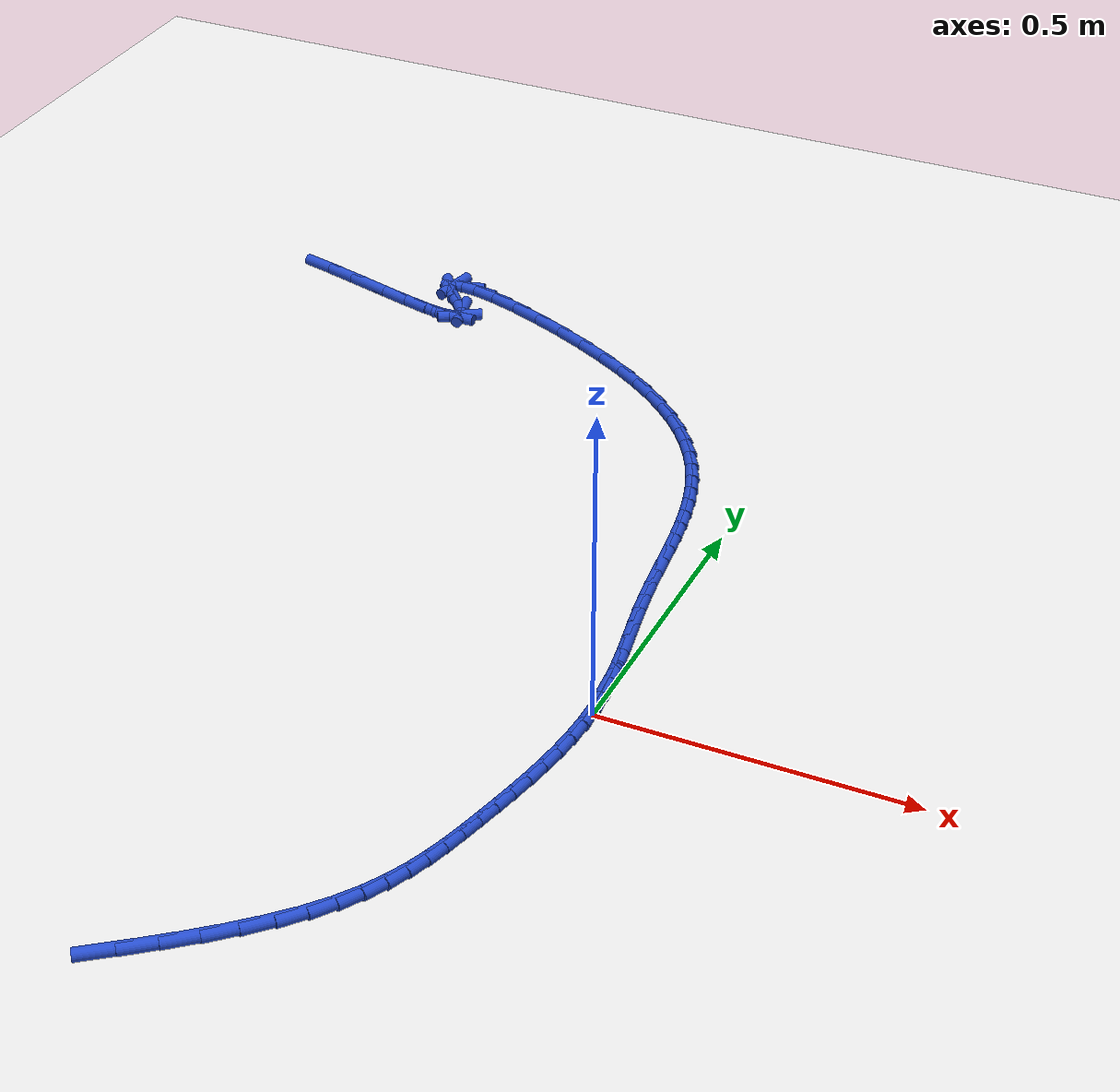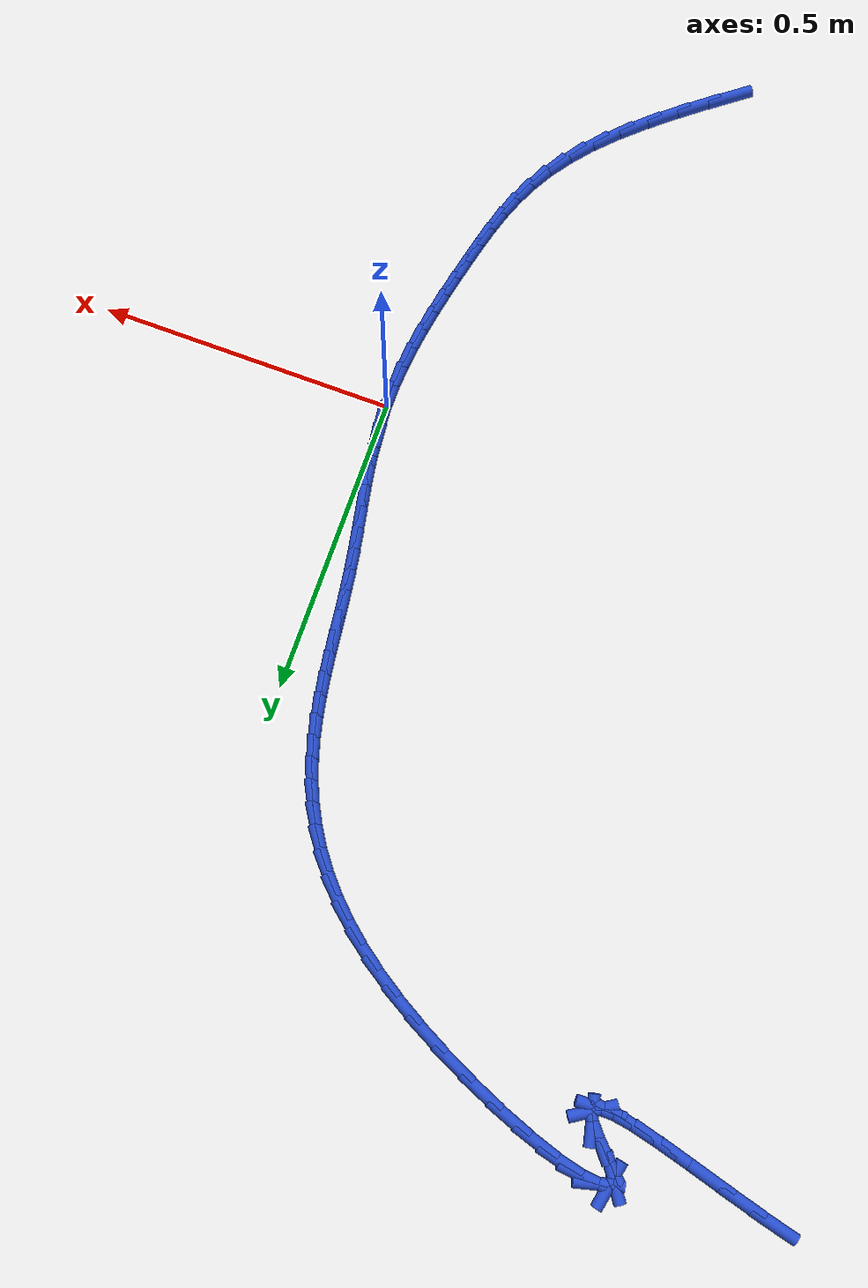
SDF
<sdf version="1.6">
 <world name="default">
  <model name="ground_plane">
   <static>1</static>
   <link name="link">
    <collision name="collision">
     <geometry><plane><normal>0 0 1</normal><size>100 100</size></plane></geometry>
     <surface><friction><ode><mu>100</mu><mu2>50</mu2></ode></friction></surface>
    </collision>
    <visual name="visual">
     <cast_shadows>0</cast_shadows>
     <geometry><plane><normal>0 0 1</normal><size>100 100</size></plane></geometry>
     <material>
      <script><uri>file://media/materials/scripts/gazebo.material</uri><name>Gazebo/WhiteGlow</name></script>
     </material>
    </visual>
   </link>
  </model>
  <model name="line">
   <link name="link_0">
    <pose>1.0408340855860843e-17 2.0816681711721685e-17 0.01 0 1.57 -1.5239924957447901</pose>
    <collision name="collision">
     <geometry><cylinder><radius>0.01</radius><length>0.08</length></cylinder></geometry>
    </collision>
    <visual name="visual">
     <material>
      <script><name>Gazebo/Blue</name><uri>file://media/materials/scripts/gazebo.material</uri></script>
     </material>
     <geometry><cylinder><radius>0.01</radius><length>0.08</length></cylinder></geometry>
    </visual>
   </link>
   <link name="link_1">
    <pose>-0.001704649692244981 0.03639455868884389 0.01 0 1.57 -1.4743259532851969</pose>
    <collision name="collision">
     <geometry><cylinder><radius>0.01</radius><length>0.08</length></cylinder></geometry>
    </collision>
    <visual name="visual">
     <material>
      <script><name>Gazebo/Blue</name><uri>file://media/materials/scripts/gazebo.material</uri></script>
     </material>
     <geometry><cylinder><radius>0.01</radius><length>0.08</length></cylinder></geometry>
    </visual>
   </link>
   <link name="link_2">
    <pose>-0.005213107491138306 0.07264990894340112 0.01 0 1.57 -1.4358090419680396</pose>
    <collision name="collision">
     <geometry><cylinder><radius>0.01</radius><length>0.08</length></cylinder></geometry>
    </collision>
    <visual name="visual">
     <material>
      <script><name>Gazebo/Blue</name><uri>file://media/materials/scripts/gazebo.material</uri></script>
     </material>
     <geometry><cylinder><radius>0.01</radius><length>0.08</length></cylinder></geometry>
    </visual>
   </link>
   <link name="link_3">
    <pose>-0.01011653349412395 0.10875410249948468 0.01 0 1.57 -1.4083729899003963</pose>
    <collision name="collision">
     <geometry><cylinder><radius>0.01</radius><length>0.08</length></cylinder></geometry>
    </collision>
    <visual name="visual">
     <material>
      <script><name>Gazebo/Blue</name><uri>file://media/materials/scripts/gazebo.material</uri></script>
     </material>
     <geometry><cylinder><radius>0.01</radius><length>0.08</length></cylinder></geometry>
    </visual>
   </link>
   <link name="link_4">
    <pose>-0.016006087798645922 0.14469519109290768 0.01 0 1.57 -1.3919193030232373</pose>
    <collision name="collision">
     <geometry><cylinder><radius>0.01</radius><length>0.08</length></cylinder></geometry>
    </collision>
    <visual name="visual">
     <material>
      <script><name>Gazebo/Blue</name><uri>file://media/materials/scripts/gazebo.material</uri></script>
     </material>
     <geometry><cylinder><radius>0.01</radius><length>0.08</length></cylinder></geometry>
    </visual>
   </link>
   <link name="link_5">
    <pose>-0.022472930502148214 0.18046122645948304 0.01 0 1.57 -1.3864199840498364</pose>
    <collision name="collision">
     <geometry><cylinder><radius>0.01</radius><length>0.08</length></cylinder></geometry>
    </collision>
    <visual name="visual">
     <material>
      <script><name>Gazebo/Blue</name><uri>file://media/materials/scripts/gazebo.material</uri></script>
     </material>
     <geometry><cylinder><radius>0.01</radius><length>0.08</length></cylinder></geometry>
    </visual>
   </link>
   <link name="link_6">
    <pose>-0.029108221702074815 0.2160402603350239 0.01 0 1.57 -1.39197840082482</pose>
    <collision name="collision">
     <geometry><cylinder><radius>0.01</radius><length>0.08</length></cylinder></geometry>
    </collision>
    <visual name="visual">
     <material>
      <script><name>Gazebo/Blue</name><uri>file://media/materials/scripts/gazebo.material</uri></script>
     </material>
     <geometry><cylinder><radius>0.01</radius><length>0.08</length></cylinder></geometry>
    </visual>
   </link>
   <link name="link_7">
    <pose>-0.03550312149586973 0.25142034445534317 0.01 0 1.57 -1.4088456013283674</pose>
    <collision name="collision">
     <geometry><cylinder><radius>0.01</radius><length>0.08</length></cylinder></geometry>
    </collision>
    <visual name="visual">
     <material>
      <script><name>Gazebo/Blue</name><uri>file://media/materials/scripts/gazebo.material</uri></script>
     </material>
     <geometry><cylinder><radius>0.01</radius><length>0.08</length></cylinder></geometry>
    </visual>
   </link>
   <link name="link_8">
    <pose>-0.04124912028710268 0.286589531209608 0.01 0 1.57 -1.432309665168486</pose>
    <collision name="collision">
     <geometry><cylinder><radius>0.01</radius><length>0.08</length></cylinder></geometry>
    </collision>
    <visual name="visual">
     <material>
      <script><name>Gazebo/Blue</name><uri>file://media/materials/scripts/gazebo.material</uri></script>
     </material>
     <geometry><cylinder><radius>0.01</radius><length>0.08</length></cylinder></geometry>
    </visual>
   </link>
   <link name="link_9">
    <pose>-0.04611995080088553 0.32153623346692134 0.01 0 1.57 -1.448867968405959</pose>
    <collision name="collision">
     <geometry><cylinder><radius>0.01</radius><length>0.08</length></cylinder></geometry>
    </collision>
    <visual name="visual">
     <material>
      <script><name>Gazebo/Blue</name><uri>file://media/materials/scripts/gazebo.material</uri></script>
     </material>
     <geometry><cylinder><radius>0.01</radius><length>0.08</length></cylinder></geometry>
    </visual>
   </link>
   <link name="link_10">
    <pose>-0.05037362168738378 0.3562498220064544 0.01 0 1.57 -1.456012513739763</pose>
    <collision name="collision">
     <geometry><cylinder><radius>0.01</radius><length>0.08</length></cylinder></geometry>
    </collision>
    <visual name="visual">
     <material>
      <script><name>Gazebo/Blue</name><uri>file://media/materials/scripts/gazebo.material</uri></script>
     </material>
     <geometry><cylinder><radius>0.01</radius><length>0.08</length></cylinder></geometry>
    </visual>
   </link>
   <link name="link_11">
    <pose>-0.05434768861714777 0.3907198249534029 0.01 0 1.57 -1.4534969441290115</pose>
    <collision name="collision">
     <geometry><cylinder><radius>0.01</radius><length>0.08</length></cylinder></geometry>
    </collision>
    <visual name="visual">
     <material>
      <script><name>Gazebo/Blue</name><uri>file://media/materials/scripts/gazebo.material</uri></script>
     </material>
     <geometry><cylinder><radius>0.01</radius><length>0.08</length></cylinder></geometry>
    </visual>
   </link>
   <link name="link_12">
    <pose>-0.05837970726072789 0.4249357704329629 0.01 0 1.57 -1.4411204210888087</pose>
    <collision name="collision">
     <geometry><cylinder><radius>0.01</radius><length>0.08</length></cylinder></geometry>
    </collision>
    <visual name="visual">
     <material>
      <script><name>Gazebo/Blue</name><uri>file://media/materials/scripts/gazebo.material</uri></script>
     </material>
     <geometry><cylinder><radius>0.01</radius><length>0.08</length></cylinder></geometry>
    </visual>
   </link>
   <link name="link_13">
    <pose>-0.06280723328867449 0.4588871865703299 0.01 0 1.57 -1.4187387482534757</pose>
    <collision name="collision">
     <geometry><cylinder><radius>0.01</radius><length>0.08</length></cylinder></geometry>
    </collision>
    <visual name="visual">
     <material>
      <script><name>Gazebo/Blue</name><uri>file://media/materials/scripts/gazebo.material</uri></script>
     </material>
     <geometry><cylinder><radius>0.01</radius><length>0.08</length></cylinder></geometry>
    </visual>
   </link>
   <link name="link_14">
    <pose>-0.06796782237153794 0.49256360149069994 0.01 0 1.57 -1.3863046957361045</pose>
    <collision name="collision">
     <geometry><cylinder><radius>0.01</radius><length>0.08</length></cylinder></geometry>
    </collision>
    <visual name="visual">
     <material>
      <script><name>Gazebo/Blue</name><uri>file://media/materials/scripts/gazebo.material</uri></script>
     </material>
     <geometry><cylinder><radius>0.01</radius><length>0.08</length></cylinder></geometry>
    </visual>
   </link>
   <link name="link_15">
    <pose>-0.07419903017986862 0.5259545433192688 0.01 0 1.57 -1.3439379446227215</pose>
    <collision name="collision">
     <geometry><cylinder><radius>0.01</radius><length>0.08</length></cylinder></geometry>
    </collision>
    <visual name="visual">
     <material>
      <script><name>Gazebo/Blue</name><uri>file://media/materials/scripts/gazebo.material</uri></script>
     </material>
     <geometry><cylinder><radius>0.01</radius><length>0.08</length></cylinder></geometry>
    </visual>
   </link>
   <link name="link_16">
    <pose>-0.0818384123842169 0.5590495401812324 0.01 0 1.57 -1.2920188969965016</pose>
    <collision name="collision">
     <geometry><cylinder><radius>0.01</radius><length>0.08</length></cylinder></geometry>
    </collision>
    <visual name="visual">
     <material>
      <script><name>Gazebo/Blue</name><uri>file://media/materials/scripts/gazebo.material</uri></script>
     </material>
     <geometry><cylinder><radius>0.01</radius><length>0.08</length></cylinder></geometry>
    </visual>
   </link>
   <link name="link_17">
    <pose>-0.09122352465513311 0.5918381202017867 0.01 0 1.57 -1.231290097515232</pose>
    <collision name="collision">
     <geometry><cylinder><radius>0.01</radius><length>0.08</length></cylinder></geometry>
    </collision>
    <visual name="visual">
     <material>
      <script><name>Gazebo/Blue</name><uri>file://media/materials/scripts/gazebo.material</uri></script>
     </material>
     <geometry><cylinder><radius>0.01</radius><length>0.08</length></cylinder></geometry>
    </visual>
   </link>
   <link name="link_18">
    <pose>-0.10269192266316768 0.6243098115061271 0.01 0 1.57 -1.1629358616328311</pose>
    <collision name="collision">
     <geometry><cylinder><radius>0.01</radius><length>0.08</length></cylinder></geometry>
    </collision>
    <visual name="visual">
     <material>
      <script><name>Gazebo/Blue</name><uri>file://media/materials/scripts/gazebo.material</uri></script>
     </material>
     <geometry><cylinder><radius>0.01</radius><length>0.08</length></cylinder></geometry>
    </visual>
   </link>
   <link name="link_19">
    <pose>-0.1165811620788709 0.6564541422194498 0.01 0 1.57 -1.0886015923826649</pose>
    <collision name="collision">
     <geometry><cylinder><radius>0.01</radius><length>0.08</length></cylinder></geometry>
    </collision>
    <visual name="visual">
     <material>
      <script><name>Gazebo/Blue</name><uri>file://media/materials/scripts/gazebo.material</uri></script>
     </material>
     <geometry><cylinder><radius>0.01</radius><length>0.08</length></cylinder></geometry>
    </visual>
   </link>
   <link name="link_20">
    <pose>-0.1332287985727932 0.6882606404669505 0.01 0 1.57 -1.0103198007970067</pose>
    <collision name="collision">
     <geometry><cylinder><radius>0.01</radius><length>0.08</length></cylinder></geometry>
    </collision>
    <visual name="visual">
     <material>
      <script><name>Gazebo/Blue</name><uri>file://media/materials/scripts/gazebo.material</uri></script>
     </material>
     <geometry><cylinder><radius>0.01</radius><length>0.08</length></cylinder></geometry>
    </visual>
   </link>
   <link name="link_21">
    <pose>-0.15297238781548483 0.7197188343738248 0.01 0 1.57 -0.9303368503386841</pose>
    <collision name="collision">
     <geometry><cylinder><radius>0.01</radius><length>0.08</length></cylinder></geometry>
    </collision>
    <visual name="visual">
     <material>
      <script><name>Gazebo/Blue</name><uri>file://media/materials/scripts/gazebo.material</uri></script>
     </material>
     <geometry><cylinder><radius>0.01</radius><length>0.08</length></cylinder></geometry>
    </visual>
   </link>
   <link name="link_22">
    <pose>-0.17614948547749634 0.7508182520652689 0.01 0 1.57 -0.8508751186777291</pose>
    <collision name="collision">
     <geometry><cylinder><radius>0.01</radius><length>0.08</length></cylinder></geometry>
    </collision>
    <visual name="visual">
     <material>
      <script><name>Gazebo/Blue</name><uri>file://media/materials/scripts/gazebo.material</uri></script>
     </material>
     <geometry><cylinder><radius>0.01</radius><length>0.08</length></cylinder></geometry>
    </visual>
   </link>
   <link name="link_23">
    <pose>-0.203097647229378 0.7815484216664785 0.01 0 1.57 -0.7738962488050707</pose>
    <collision name="collision">
     <geometry><cylinder><radius>0.01</radius><length>0.08</length></cylinder></geometry>
    </collision>
    <visual name="visual">
     <material>
      <script><name>Gazebo/Blue</name><uri>file://media/materials/scripts/gazebo.material</uri></script>
     </material>
     <geometry><cylinder><radius>0.01</radius><length>0.08</length></cylinder></geometry>
    </visual>
   </link>
   <link name="link_24">
    <pose>-0.23415442874168024 0.8118988713026496 0.01 0 1.57 -0.7009307114150463</pose>
    <collision name="collision">
     <geometry><cylinder><radius>0.01</radius><length>0.08</length></cylinder></geometry>
    </collision>
    <visual name="visual">
     <material>
      <script><name>Gazebo/Blue</name><uri>file://media/materials/scripts/gazebo.material</uri></script>
     </material>
     <geometry><cylinder><radius>0.01</radius><length>0.08</length></cylinder></geometry>
    </visual>
   </link>
   <link name="link_25">
    <pose>-0.2696573856849533 0.8418591290989779 0.01 0 1.57 -0.6330074193401904</pose>
    <collision name="collision">
     <geometry><cylinder><radius>0.01</radius><length>0.08</length></cylinder></geometry>
    </collision>
    <visual name="visual">
     <material>
      <script><name>Gazebo/Blue</name><uri>file://media/materials/scripts/gazebo.material</uri></script>
     </material>
     <geometry><cylinder><radius>0.01</radius><length>0.08</length></cylinder></geometry>
    </visual>
   </link>
   <link name="link_26">
    <pose>-0.30994407372974764 0.8714187231806588 0.01 0 1.57 -0.5706808058501586</pose>
    <collision name="collision">
     <geometry><cylinder><radius>0.01</radius><length>0.08</length></cylinder></geometry>
    </collision>
    <visual name="visual">
     <material>
      <script><name>Gazebo/Blue</name><uri>file://media/materials/scripts/gazebo.material</uri></script>
     </material>
     <geometry><cylinder><radius>0.01</radius><length>0.08</length></cylinder></geometry>
    </visual>
   </link>
   <link name="link_27">
    <pose>-0.3553512412465966 0.9005669226028622 0.01 0 1.57 -0.5162154952429301</pose>
    <collision name="collision">
     <geometry><cylinder><radius>0.01</radius><length>0.08</length></cylinder></geometry>
    </collision>
    <visual name="visual">
     <material>
      <script><name>Gazebo/Blue</name><uri>file://media/materials/scripts/gazebo.material</uri></script>
     </material>
     <geometry><cylinder><radius>0.01</radius><length>0.08</length></cylinder></geometry>
    </visual>
   </link>
   <link name="link_28">
    <pose>-0.40564035361045087 0.9291083827975765 0.01 0 1.57 -0.4719669233111795</pose>
    <collision name="collision">
     <geometry><cylinder><radius>0.01</radius><length>0.08</length></cylinder></geometry>
    </collision>
    <visual name="visual">
     <material>
      <script><name>Gazebo/Blue</name><uri>file://media/materials/scripts/gazebo.material</uri></script>
     </material>
     <geometry><cylinder><radius>0.01</radius><length>0.08</length></cylinder></geometry>
    </visual>
   </link>
   <link name="link_29">
    <pose>-0.4589872181306473 0.9563389068878143 0.01 0 1.57 -0.43335633205329854</pose>
    <collision name="collision">
     <geometry><cylinder><radius>0.01</radius><length>0.08</length></cylinder></geometry>
    </collision>
    <visual name="visual">
     <material>
      <script><name>Gazebo/Blue</name><uri>file://media/materials/scripts/gazebo.material</uri></script>
     </material>
     <geometry><cylinder><radius>0.01</radius><length>0.08</length></cylinder></geometry>
    </visual>
   </link>
   <link name="link_30">
    <pose>-0.5132967834728371 0.9814673769577886 0.01 0 1.57 -0.39604228629437077</pose>
    <collision name="collision">
     <geometry><cylinder><radius>0.01</radius><length>0.08</length></cylinder></geometry>
    </collision>
    <visual name="visual">
     <material>
      <script><name>Gazebo/Blue</name><uri>file://media/materials/scripts/gazebo.material</uri></script>
     </material>
     <geometry><cylinder><radius>0.01</radius><length>0.08</length></cylinder></geometry>
    </visual>
   </link>
   <link name="link_31">
    <pose>-0.5664739983026715 1.0037026750917113 0.01 0 1.57 -0.3556045790316598</pose>
    <collision name="collision">
     <geometry><cylinder><radius>0.01</radius><length>0.08</length></cylinder></geometry>
    </collision>
    <visual name="visual">
     <material>
      <script><name>Gazebo/Blue</name><uri>file://media/materials/scripts/gazebo.material</uri></script>
     </material>
     <geometry><cylinder><radius>0.01</radius><length>0.08</length></cylinder></geometry>
    </visual>
   </link>
   <link name="link_32">
    <pose>-0.6164238112858011 1.0222536833737939 0.01 0 1.57 -0.30552735021120414</pose>
    <collision name="collision">
     <geometry><cylinder><radius>0.01</radius><length>0.08</length></cylinder></geometry>
    </collision>
    <visual name="visual">
     <material>
      <script><name>Gazebo/Blue</name><uri>file://media/materials/scripts/gazebo.material</uri></script>
     </material>
     <geometry><cylinder><radius>0.01</radius><length>0.08</length></cylinder></geometry>
    </visual>
   </link>
   <link name="link_33">
    <pose>-0.6610511710878771 1.0363292838882485 0.01 0 1.57 -0.23246060602367305</pose>
    <collision name="collision">
     <geometry><cylinder><radius>0.01</radius><length>0.08</length></cylinder></geometry>
    </collision>
    <visual name="visual">
     <material>
      <script><name>Gazebo/Blue</name><uri>file://media/materials/scripts/gazebo.material</uri></script>
     </material>
     <geometry><cylinder><radius>0.01</radius><length>0.08</length></cylinder></geometry>
    </visual>
   </link>
   <link name="link_34">
    <pose>-0.6982610263745507 1.0451383587192873 0.01 0 1.57 -0.09901448333140045</pose>
    <collision name="collision">
     <geometry><cylinder><radius>0.01</radius><length>0.08</length></cylinder></geometry>
    </collision>
    <visual name="visual">
     <material>
      <script><name>Gazebo/Blue</name><uri>file://media/materials/scripts/gazebo.material</uri></script>
     </material>
     <geometry><cylinder><radius>0.01</radius><length>0.08</length></cylinder></geometry>
    </visual>
   </link>
   <link name="link_35">
    <pose>-0.7259583258114729 1.0478897899511233 0.01 0 1.57 0.24935558453361537</pose>
    <collision name="collision">
     <geometry><cylinder><radius>0.01</radius><length>0.08</length></cylinder></geometry>
    </collision>
    <visual name="visual">
     <material>
      <script><name>Gazebo/Blue</name><uri>file://media/materials/scripts/gazebo.material</uri></script>
     </material>
     <geometry><cylinder><radius>0.01</radius><length>0.08</length></cylinder></geometry>
    </visual>
   </link>
   <link name="link_36">
    <pose>-0.7420480180642947 1.0437924596679675 0.01 0 1.57 1.3701594328385696</pose>
    <collision name="collision">
     <geometry><cylinder><radius>0.01</radius><length>0.08</length></cylinder></geometry>
    </collision>
    <visual name="visual">
     <material>
      <script><name>Gazebo/Blue</name><uri>file://media/materials/scripts/gazebo.material</uri></script>
     </material>
     <geometry><cylinder><radius>0.01</radius><length>0.08</length></cylinder></geometry>
    </visual>
   </link>
   <link name="link_37">
    <pose>-0.7444350517986671 1.0320552499540323 0.01 0 1.57 -0.984018469377502</pose>
    <collision name="collision">
     <geometry><cylinder><radius>0.01</radius><length>0.08</length></cylinder></geometry>
    </collision>
    <visual name="visual">
     <material>
      <script><name>Gazebo/Blue</name><uri>file://media/materials/scripts/gazebo.material</uri></script>
     </material>
     <geometry><cylinder><radius>0.01</radius><length>0.08</length></cylinder></geometry>
    </visual>
   </link>
   <link name="link_38">
    <pose>-0.7310256911333032 1.011887735739182 0.01 0 1.57 -0.7993445164497337</pose>
    <collision name="collision">
     <geometry><cylinder><radius>0.01</radius><length>0.08</length></cylinder></geometry>
    </collision>
    <visual name="visual">
     <material>
      <script><name>Gazebo/Blue</name><uri>file://media/materials/scripts/gazebo.material</uri></script>
     </material>
     <geometry><cylinder><radius>0.01</radius><length>0.08</length></cylinder></geometry>
    </visual>
   </link>
   <link name="link_39">
    <pose>-0.705301811926042 0.9854361519236258 0.01 0 1.57 -0.8819486344912955</pose>
    <collision name="collision">
     <geometry><cylinder><radius>0.01</radius><length>0.08</length></cylinder></geometry>
    </collision>
    <visual name="visual">
     <material>
      <script><name>Gazebo/Blue</name><uri>file://media/materials/scripts/gazebo.material</uri></script>
     </material>
     <geometry><cylinder><radius>0.01</radius><length>0.08</length></cylinder></geometry>
    </visual>
   </link>
   <link name="link_40">
    <pose>-0.6872418046976436 0.9635027153401807 0.01 0 1.57 -1.3406151099672403</pose>
    <collision name="collision">
     <geometry><cylinder><radius>0.01</radius><length>0.08</length></cylinder></geometry>
    </collision>
    <visual name="visual">
     <material>
      <script><name>Gazebo/Blue</name><uri>file://media/materials/scripts/gazebo.material</uri></script>
     </material>
     <geometry><cylinder><radius>0.01</radius><length>0.08</length></cylinder></geometry>
    </visual>
   </link>
   <link name="link_41">
    <pose>-0.6840455368372199 0.9498629501407568 0.01 0 1.57 0.5637328356442467</pose>
    <collision name="collision">
     <geometry><cylinder><radius>0.01</radius><length>0.08</length></cylinder></geometry>
    </collision>
    <visual name="visual">
     <material>
      <script><name>Gazebo/Blue</name><uri>file://media/materials/scripts/gazebo.material</uri></script>
     </material>
     <geometry><cylinder><radius>0.01</radius><length>0.08</length></cylinder></geometry>
    </visual>
   </link>
   <link name="link_42">
    <pose>-0.6941120176956872 0.9434993050487757 0.01 0 1.57 0.00691052210493459</pose>
    <collision name="collision">
     <geometry><cylinder><radius>0.01</radius><length>0.08</length></cylinder></geometry>
    </collision>
    <visual name="visual">
     <material>
      <script><name>Gazebo/Blue</name><uri>file://media/materials/scripts/gazebo.material</uri></script>
     </material>
     <geometry><cylinder><radius>0.01</radius><length>0.08</length></cylinder></geometry>
    </visual>
   </link>
   <link name="link_43">
    <pose>-0.7157585203674961 0.9433497140323046 0.01 0 1.57 -0.15727601696147575</pose>
    <collision name="collision">
     <geometry><cylinder><radius>0.01</radius><length>0.08</length></cylinder></geometry>
    </collision>
    <visual name="visual">
     <material>
      <script><name>Gazebo/Blue</name><uri>file://media/materials/scripts/gazebo.material</uri></script>
     </material>
     <geometry><cylinder><radius>0.01</radius><length>0.08</length></cylinder></geometry>
    </visual>
   </link>
   <link name="link_44">
    <pose>-0.7473023179470978 0.9483521110594113 0.01 0 1.57 -0.22482333381310624</pose>
    <collision name="collision">
     <geometry><cylinder><radius>0.01</radius><length>0.08</length></cylinder></geometry>
    </collision>
    <visual name="visual">
     <material>
      <script><name>Gazebo/Blue</name><uri>file://media/materials/scripts/gazebo.material</uri></script>
     </material>
     <geometry><cylinder><radius>0.01</radius><length>0.08</length></cylinder></geometry>
    </visual>
   </link>
   <link name="link_45">
    <pose>-0.7870606835289431 0.957444430098162 0.01 0 1.57 -0.2560816247083536</pose>
    <collision name="collision">
     <geometry><cylinder><radius>0.01</radius><length>0.08</length></cylinder></geometry>
    </collision>
    <visual name="visual">
     <material>
      <script><name>Gazebo/Blue</name><uri>file://media/materials/scripts/gazebo.material</uri></script>
     </material>
     <geometry><cylinder><radius>0.01</radius><length>0.08</length></cylinder></geometry>
    </visual>
   </link>
   <link name="link_46">
    <pose>-0.8333508902074833 0.9695646051166249 0.01 0 1.57 -0.2687779634327579</pose>
    <collision name="collision">
     <geometry><cylinder><radius>0.01</radius><length>0.08</length></cylinder></geometry>
    </collision>
    <visual name="visual">
     <material>
      <script><name>Gazebo/Blue</name><uri>file://media/materials/scripts/gazebo.material</uri></script>
     </material>
     <geometry><cylinder><radius>0.01</radius><length>0.08</length></cylinder></geometry>
    </visual>
   </link>
   <link name="link_47">
    <pose>-0.8844902110771694 0.9836505700828669 0.01 0 1.57 -0.2693181388148366</pose>
    <collision name="collision">
     <geometry><cylinder><radius>0.01</radius><length>0.08</length></cylinder></geometry>
    </collision>
    <visual name="visual">
     <material>
      <script><name>Gazebo/Blue</name><uri>file://media/materials/scripts/gazebo.material</uri></script>
     </material>
     <geometry><cylinder><radius>0.01</radius><length>0.08</length></cylinder></geometry>
    </visual>
   </link>
   <link name="link_48">
    <pose>-0.938795919232452 0.998640258964955 0.01 0 1.57 -0.25983548853780686</pose>
    <collision name="collision">
     <geometry><cylinder><radius>0.01</radius><length>0.08</length></cylinder></geometry>
    </collision>
    <visual name="visual">
     <material>
      <script><name>Gazebo/Blue</name><uri>file://media/materials/scripts/gazebo.material</uri></script>
     </material>
     <geometry><cylinder><radius>0.01</radius><length>0.08</length></cylinder></geometry>
    </visual>
   </link>
   <link name="link_49">
    <pose>-0.9945852877677822 1.0134716057309565 0.01 0 1.57 -0.24011987563167747</pose>
    <collision name="collision">
     <geometry><cylinder><radius>0.01</radius><length>0.08</length></cylinder></geometry>
    </collision>
    <visual name="visual">
     <material>
      <script><name>Gazebo/Blue</name><uri>file://media/materials/scripts/gazebo.material</uri></script>
     </material>
     <geometry><cylinder><radius>0.01</radius><length>0.08</length></cylinder></geometry>
    </visual>
   </link>
   <link name="link_199">
    <pose>-0.3648237073222488 -0.7202535762569795 0.01 0 1.57 0.646277394356008</pose>
    <collision name="collision">
     <geometry><cylinder><radius>0.01</radius><length>0.08</length></cylinder></geometry>
    </collision>
    <visual name="visual">
     <material>
      <script><name>Gazebo/Blue</name><uri>file://media/materials/scripts/gazebo.material</uri></script>
     </material>
     <geometry><cylinder><radius>0.01</radius><length>0.08</length></cylinder></geometry>
    </visual>
   </link>
   <link name="link_200">
    <pose>-0.31996742089012703 -0.6864163707626659 0.01 0 1.57 0.6711275796806304</pose>
    <collision name="collision">
     <geometry><cylinder><radius>0.01</radius><length>0.08</length></cylinder></geometry>
    </collision>
    <visual name="visual">
     <material>
      <script><name>Gazebo/Blue</name><uri>file://media/materials/scripts/gazebo.material</uri></script>
     </material>
     <geometry><cylinder><radius>0.01</radius><length>0.08</length></cylinder></geometry>
    </visual>
   </link>
   <link name="link_201">
    <pose>-0.27694838350764817 -0.6522553343089166 0.01 0 1.57 0.7038009277380171</pose>
    <collision name="collision">
     <geometry><cylinder><radius>0.01</radius><length>0.08</length></cylinder></geometry>
    </collision>
    <visual name="visual">
     <material>
      <script><name>Gazebo/Blue</name><uri>file://media/materials/scripts/gazebo.material</uri></script>
     </material>
     <geometry><cylinder><radius>0.01</radius><length>0.08</length></cylinder></geometry>
    </visual>
   </link>
   <link name="link_202">
    <pose>-0.23656929435663296 -0.6179812898616167 0.01 0 1.57 0.7466030047979892</pose>
    <collision name="collision">
     <geometry><cylinder><radius>0.01</radius><length>0.08</length></cylinder></geometry>
    </collision>
    <visual name="visual">
     <material>
      <script><name>Gazebo/Blue</name><uri>file://media/materials/scripts/gazebo.material</uri></script>
     </material>
     <geometry><cylinder><radius>0.01</radius><length>0.08</length></cylinder></geometry>
    </visual>
   </link>
   <link name="link_203">
    <pose>-0.19963285261890149 -0.583805060386651 0.01 0 1.57 0.8030723986650388</pose>
    <collision name="collision">
     <geometry><cylinder><radius>0.01</radius><length>0.08</length></cylinder></geometry>
    </collision>
    <visual name="visual">
     <material>
      <script><name>Gazebo/Blue</name><uri>file://media/materials/scripts/gazebo.material</uri></script>
     </material>
     <geometry><cylinder><radius>0.01</radius><length>0.08</length></cylinder></geometry>
    </visual>
   </link>
   <link name="link_204">
    <pose>-0.16694175747627646 -0.5499374688499059 0.01 0 1.57 0.8773713520402031</pose>
    <collision name="collision">
     <geometry><cylinder><radius>0.01</radius><length>0.08</length></cylinder></geometry>
    </collision>
    <visual name="visual">
     <material>
      <script><name>Gazebo/Blue</name><uri>file://media/materials/scripts/gazebo.material</uri></script>
     </material>
     <geometry><cylinder><radius>0.01</radius><length>0.08</length></cylinder></geometry>
    </visual>
   </link>
   <link name="link_205">
    <pose>-0.1392060259439067 -0.5165655727525464 0.01 0 1.57 0.9618489317702897</pose>
    <collision name="collision">
     <geometry><cylinder><radius>0.01</radius><length>0.08</length></cylinder></geometry>
    </collision>
    <visual name="visual">
     <material>
      <script><name>Gazebo/Blue</name><uri>file://media/materials/scripts/gazebo.material</uri></script>
     </material>
     <geometry><cylinder><radius>0.01</radius><length>0.08</length></cylinder></geometry>
    </visual>
   </link>
   <link name="link_206">
    <pose>-0.11625216145344162 -0.4836498799621649 0.01 0 1.57 1.0472117615464942</pose>
    <collision name="collision">
     <geometry><cylinder><radius>0.01</radius><length>0.08</length></cylinder></geometry>
    </collision>
    <visual name="visual">
     <material>
      <script><name>Gazebo/Blue</name><uri>file://media/materials/scripts/gazebo.material</uri></script>
     </material>
     <geometry><cylinder><radius>0.01</radius><length>0.08</length></cylinder></geometry>
    </visual>
   </link>
   <link name="link_207">
    <pose>-0.09741699025481758 -0.4510253358330458 0.01 0 1.57 1.128667799169402</pose>
    <collision name="collision">
     <geometry><cylinder><radius>0.01</radius><length>0.08</length></cylinder></geometry>
    </collision>
    <visual name="visual">
     <material>
      <script><name>Gazebo/Blue</name><uri>file://media/materials/scripts/gazebo.material</uri></script>
     </material>
     <geometry><cylinder><radius>0.01</radius><length>0.08</length></cylinder></geometry>
    </visual>
   </link>
   <link name="link_208">
    <pose>-0.0820321305600553 -0.4185255502798131 0.01 0 1.57 1.2012955817063218</pose>
    <collision name="collision">
     <geometry><cylinder><radius>0.01</radius><length>0.08</length></cylinder></geometry>
    </collision>
    <visual name="visual">
     <material>
      <script><name>Gazebo/Blue</name><uri>file://media/materials/scripts/gazebo.material</uri></script>
     </material>
     <geometry><cylinder><radius>0.01</radius><length>0.08</length></cylinder></geometry>
    </visual>
   </link>
   <link name="link_209">
    <pose>-0.0694292005811741 -0.38598413321708874 0.01 0 1.57 1.2608285600762943</pose>
    <collision name="collision">
     <geometry><cylinder><radius>0.01</radius><length>0.08</length></cylinder></geometry>
    </collision>
    <visual name="visual">
     <material>
      <script><name>Gazebo/Blue</name><uri>file://media/materials/scripts/gazebo.material</uri></script>
     </material>
     <geometry><cylinder><radius>0.01</radius><length>0.08</length></cylinder></geometry>
    </visual>
   </link>
   <link name="link_210">
    <pose>-0.05893981853019375 -0.353234694559495 0.01 0 1.57 1.3042509814220065</pose>
    <collision name="collision">
     <geometry><cylinder><radius>0.01</radius><length>0.08</length></cylinder></geometry>
    </collision>
    <visual name="visual">
     <material>
      <script><name>Gazebo/Blue</name><uri>file://media/materials/scripts/gazebo.material</uri></script>
     </material>
     <geometry><cylinder><radius>0.01</radius><length>0.08</length></cylinder></geometry>
    </visual>
   </link>
   <link name="link_211">
    <pose>-0.04989560261913402 -0.3201108442216546 0.01 0 1.57 1.3299801132202869</pose>
    <collision name="collision">
     <geometry><cylinder><radius>0.01</radius><length>0.08</length></cylinder></geometry>
    </collision>
    <visual name="visual">
     <material>
      <script><name>Gazebo/Blue</name><uri>file://media/materials/scripts/gazebo.material</uri></script>
     </material>
     <geometry><cylinder><radius>0.01</radius><length>0.08</length></cylinder></geometry>
    </visual>
   </link>
   <link name="link_212">
    <pose>-0.041628171060014534 -0.28644619211818917 0.01 0 1.57 1.340328468665272</pose>
    <collision name="collision">
     <geometry><cylinder><radius>0.01</radius><length>0.08</length></cylinder></geometry>
    </collision>
    <visual name="visual">
     <material>
      <script><name>Gazebo/Blue</name><uri>file://media/materials/scripts/gazebo.material</uri></script>
     </material>
     <geometry><cylinder><radius>0.01</radius><length>0.08</length></cylinder></geometry>
    </visual>
   </link>
   <link name="link_213">
    <pose>-0.03357015570149964 -0.2521037057767069 0.01 0 1.57 1.3513653375697467</pose>
    <collision name="collision">
     <geometry><cylinder><radius>0.01</radius><length>0.08</length></cylinder></geometry>
    </collision>
    <visual name="visual">
     <material>
      <script><name>Gazebo/Blue</name><uri>file://media/materials/scripts/gazebo.material</uri></script>
     </material>
     <geometry><cylinder><radius>0.01</radius><length>0.08</length></cylinder></geometry>
    </visual>
   </link>
   <link name="link_214">
    <pose>-0.025769151367511917 -0.2171250795346464 0.01 0 1.57 1.3689684717161237</pose>
    <collision name="collision">
     <geometry><cylinder><radius>0.01</radius><length>0.08</length></cylinder></geometry>
    </collision>
    <visual name="visual">
     <material>
      <script><name>Gazebo/Blue</name><uri>file://media/materials/scripts/gazebo.material</uri></script>
     </material>
     <geometry><cylinder><radius>0.01</radius><length>0.08</length></cylinder></geometry>
    </visual>
   </link>
   <link name="link_215">
    <pose>-0.01850417524776965 -0.18161926605690268 0.01 0 1.57 1.393156280713644</pose>
    <collision name="collision">
     <geometry><cylinder><radius>0.01</radius><length>0.08</length></cylinder></geometry>
    </collision>
    <visual name="visual">
     <material>
      <script><name>Gazebo/Blue</name><uri>file://media/materials/scripts/gazebo.material</uri></script>
     </material>
     <geometry><cylinder><radius>0.01</radius><length>0.08</length></cylinder></geometry>
    </visual>
   </link>
   <link name="link_216">
    <pose>-0.012054663974765826 -0.14569533991110523 0.01 0 1.57 1.4240754681639654</pose>
    <collision name="collision">
     <geometry><cylinder><radius>0.01</radius><length>0.08</length></cylinder></geometry>
    </collision>
    <visual name="visual">
     <material>
      <script><name>Gazebo/Blue</name><uri>file://media/materials/scripts/gazebo.material</uri></script>
     </material>
     <geometry><cylinder><radius>0.01</radius><length>0.08</length></cylinder></geometry>
    </visual>
   </link>
   <link name="link_217">
    <pose>-0.006700054180993901 -0.10946237566488634 0.01 0 1.57 1.4619785902731846</pose>
    <collision name="collision">
     <geometry><cylinder><radius>0.01</radius><length>0.08</length></cylinder></geometry>
    </collision>
    <visual name="visual">
     <material>
      <script><name>Gazebo/Blue</name><uri>file://media/materials/scripts/gazebo.material</uri></script>
     </material>
     <geometry><cylinder><radius>0.01</radius><length>0.08</length></cylinder></geometry>
    </visual>
   </link>
   <link name="link_218">
    <pose>-0.002719782498946866 -0.07302944788587566 0.01 0 1.57 1.5071841898832712</pose>
    <collision name="collision">
     <geometry><cylinder><radius>0.01</radius><length>0.08</length></cylinder></geometry>
    </collision>
    <visual name="visual">
     <material>
      <script><name>Gazebo/Blue</name><uri>file://media/materials/scripts/gazebo.material</uri></script>
     </material>
     <geometry><cylinder><radius>0.01</radius><length>0.08</length></cylinder></geometry>
    </visual>
   </link>
   <link name="link_219">
    <pose>-0.00039328556111784766 -0.03650563114170369 0.01 0 1.57 1.5600234587608433</pose>
    <collision name="collision">
     <geometry><cylinder><radius>0.01</radius><length>0.08</length></cylinder></geometry>
    </collision>
    <visual name="visual">
     <material>
      <script><name>Gazebo/Blue</name><uri>file://media/materials/scripts/gazebo.material</uri></script>
     </material>
     <geometry><cylinder><radius>0.01</radius><length>0.08</length></cylinder></geometry>
    </visual>
   </link>
   <link name="link_220">
    <pose>-5.204170427930421e-18 -1.3877787807814457e-17 0.01 0 1.57 -1.5208257592179841</pose>
    <collision name="collision">
     <geometry><cylinder><radius>0.01</radius><length>0.08</length></cylinder></geometry>
    </collision>
    <visual name="visual">
     <material>
      <script><name>Gazebo/Blue</name><uri>file://media/materials/scripts/gazebo.material</uri></script>
     </material>
     <geometry><cylinder><radius>0.01</radius><length>0.08</length></cylinder></geometry>
    </visual>
   </link>
   <link name="link_221">
    <pose>-0.0018193624480864305 0.0363783709716022 0.01 0 1.57 -1.4520656458983818</pose>
    <collision name="collision">
     <geometry><cylinder><radius>0.01</radius><length>0.08</length></cylinder></geometry>
    </collision>
    <visual name="visual">
     <material>
      <script><name>Gazebo/Blue</name><uri>file://media/materials/scripts/gazebo.material</uri></script>
     </material>
     <geometry><cylinder><radius>0.01</radius><length>0.08</length></cylinder></geometry>
    </visual>
   </link>
   <link name="link_222">
    <pose>-0.006130809537870449 0.07252040720547598 0.01 0 1.57 -1.486457769658471</pose>
    <collision name="collision">
     <geometry><cylinder><radius>0.01</radius><length>0.08</length></cylinder></geometry>
    </collision>
    <visual name="visual">
     <material>
      <script><name>Gazebo/Blue</name><uri>file://media/materials/scripts/gazebo.material</uri></script>
     </material>
     <geometry><cylinder><radius>0.01</radius><length>0.08</length></cylinder></geometry>
    </visual>
   </link>
  </model>
 </world>
</sdf>
